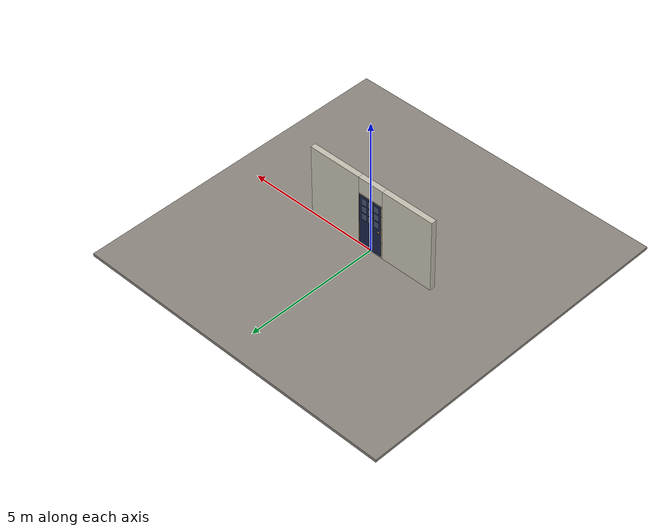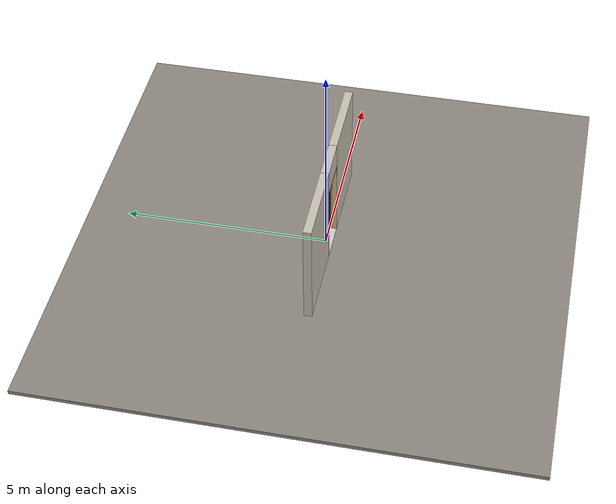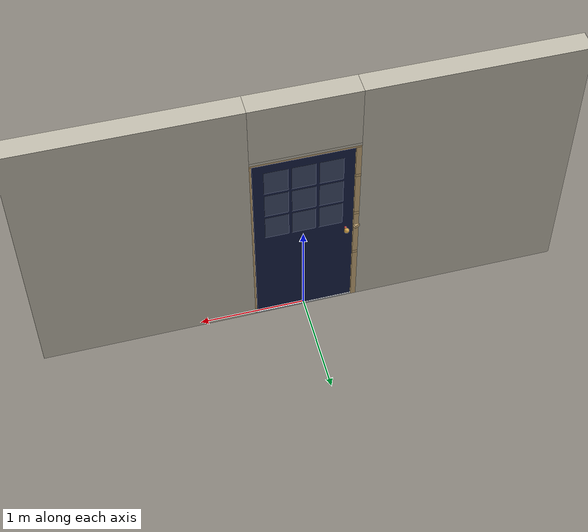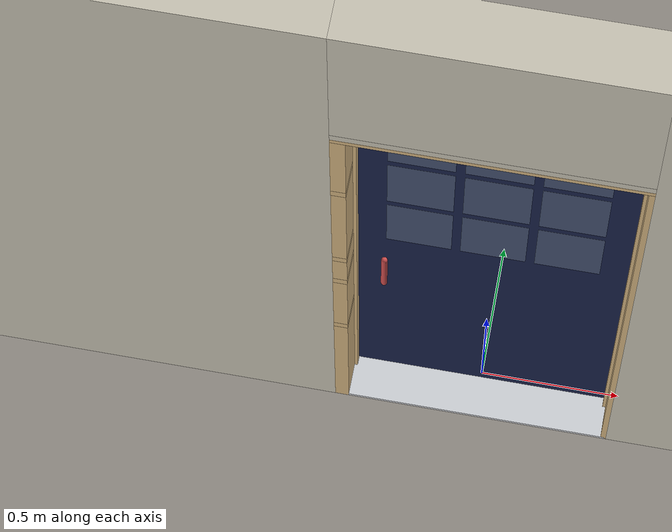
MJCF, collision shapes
<?xml version="1.0" ?>
<mujoco model="db0062_swing_single_minimal">
  <compiler angle="radian" meshdir="../../hardware" texturedir="../../textures" autolimits="true" inertiafromgeom="false"/>
  <option timestep="0.002" integrator="implicitfast" cone="elliptic" impratio="10" noslip_iterations="3">
    <flag multiccd="enable"/>
  </option>
  <size memory="16M"/>
  <default>
    <geom condim="4" solref="0.005 1" solimp="0.95 0.99 0.001"/>
    <joint solreflimit="0.005 1" solimplimit="0.95 0.99 0.001"/>
    <tendon solreflimit="0.005 1"/>
    <equality solref="0.002 1"/>
  </default>
  <visual>
    <headlight ambient="0.4 0.4 0.4" diffuse="0.7 0.7 0.7" specular="0.2 0.2 0.2"/>
    <quality shadowsize="4096"/>
    <map znear="0.01" zfar="60"/>
  </visual>
  <asset>
    <mesh name="handleset_beb5526ad2" file="handleset_beb5526ad2.obj"/>
    <mesh name="knob_d1888f6f03" file="knob_d1888f6f03.obj"/>
    <material name="mat_floor" rgba="0.55 0.53 0.5 1" specular="0.2" shininess="0.15" reflectance="0"/>
    <material name="mat_wall" rgba="0.78 0.76 0.7 1" specular="0.2" shininess="0.1" reflectance="0"/>
    <material name="mat_leaf" rgba="0.09 0.13 0.28 1" specular="0.2" shininess="0.55" reflectance="0"/>
    <material name="mat_glass" rgba="0.85 0.92 0.95 0.25" specular="0.2" shininess="0.95" reflectance="0.1"/>
    <material name="mat_hinge" rgba="0.65 0.66 0.68 1" specular="0.74" shininess="0.5" reflectance="0.36"/>
    <material name="mat_op_bronze" rgba="0.3 0.22 0.15 1" specular="0.74" shininess="0.5" reflectance="0.36"/>
    <material name="mat_op_brass" rgba="0.85 0.66 0.3 1" specular="0.8" shininess="0.75" reflectance="0.4"/>
    <material name="mat_trim" rgba="0.85 0.66 0.3 1" specular="0.8" shininess="0.75" reflectance="0.4"/>
    <material name="mat_bolt" rgba="0.85 0.66 0.3 1" specular="0.8" shininess="0.75" reflectance="0.4"/>
    <material name="mat_deadbolt" rgba="0.85 0.66 0.3 1" specular="0.8" shininess="0.75" reflectance="0.4"/>
    <material name="mat_frame" rgba="0.82 0.7 0.5 1" specular="0.2" shininess="0.45" reflectance="0"/>
    <material name="mat_seal" rgba="0.1 0.1 0.1 1" specular="0.2" shininess="0.1" reflectance="0"/>
    <material name="mat_threshold" rgba="0.8 0.81 0.83 1" specular="0.8" shininess="0.6" reflectance="0.4"/>
    <material name="mat_sidelite" rgba="0.85 0.92 0.95 0.25" specular="0.2" shininess="0.95" reflectance="0.1"/>
    <material name="mat_stop" rgba="0.9 0.9 0.92 1" specular="0.8" shininess="0.9" reflectance="0.4"/>
    <texture name="skybox" type="skybox" builtin="gradient" rgb1="0.6 0.7 0.85" rgb2="0.9 0.92 0.95" width="256" height="256"/>
  </asset>
  <worldbody>
    <light name="sun" pos="1.5 -2.5 4" dir="-0.3 0.5 -0.8" directional="true" diffuse="0.8 0.8 0.8" specular="0.3 0.3 0.3" castshadow="true"/>
    <light name="fill" pos="-1.5 2.5 3" dir="0.3 -0.5 -0.7" directional="true" diffuse="0.35 0.35 0.4" castshadow="false"/>
    <camera name="robot_view" pos="0 -2.613187 1.734312" xyaxes="1 0 0 0 0.26963 0.962964" fovy="52"/>
    <camera name="far_view" pos="0 2.471187 1.734312" xyaxes="-1 0 0 0 -0.26963 0.962964" fovy="52"/>
    <camera name="iso" pos="-1.932062 -2.206438 2.141063" xyaxes="0.741536 -0.670913 0 0.242917 0.268487 0.932151" fovy="46"/>
    <camera name="detail_handle" pos="-0.1715 -0.882 1.236" xyaxes="0.97561 0.219512 0 -0.070934 0.315262 0.94635" fovy="38"/>
    <geom name="floor" type="box" size="6 6 0.05" pos="0 0 -0.05" material="mat_floor" group="0" contype="1" conaffinity="1" friction="0.8 0.005 0.0001" density="2400"/>
    <geom name="wall_left" type="box" size="0.99525 0.1 1.35" pos="-1.50475 -0.071 1.35" material="mat_wall" group="0" contype="1" conaffinity="1" friction="0.6 0.005 0.0001" density="800"/>
    <geom name="wall_right" type="box" size="1.01025 0.1 1.35" pos="1.48975 -0.071 1.35" material="mat_wall" group="0" contype="1" conaffinity="1" friction="0.6 0.005 0.0001" density="800"/>
    <geom name="wall_header" type="box" size="0.4945 0.1 0.303" pos="-0.015 -0.071 2.397" material="mat_wall" group="0" contype="1" conaffinity="1" friction="0.6 0.005 0.0001" density="800"/>
    <geom name="jamb_hinge" type="box" size="0.0095 0.1 1.0225" pos="0.47 -0.071 1.0225" material="mat_frame" group="0" contype="1" conaffinity="1" friction="0.6 0.005 0.0001" density="400"/>
    <geom name="strike_641_wall_n" type="box" size="0.0245 0.08075 0.0155" pos="-0.485 -0.09025 0.641" material="mat_frame" group="0" contype="1" conaffinity="1" friction="0.6 0.005 0.0001" density="400"/>
    <geom name="strike_641_wall_p" type="box" size="0.0245 0.00975 0.0155" pos="-0.485 0.01925 0.641" material="mat_frame" group="0" contype="1" conaffinity="1" friction="0.6 0.005 0.0001" density="400"/>
    <geom name="strike_641_back" type="box" size="0.0125 0.0095 0.0155" pos="-0.497 0 0.641" material="mat_frame" group="0" contype="1" conaffinity="1" friction="0.6 0.005 0.0001" density="400"/>
    <geom name="strike_1016_wall_n" type="box" size="0.0245 0.081575 0.0167" pos="-0.485 -0.089425 1.016" material="mat_frame" group="0" contype="1" conaffinity="1" friction="0.6 0.005 0.0001" density="400"/>
    <geom name="strike_1016_wall_p" type="box" size="0.0245 0.008 0.0167" pos="-0.485 0.01585 1.016" material="mat_frame" group="0" contype="1" conaffinity="1" friction="0.6 0.005 0.0001" density="400"/>
    <geom name="strike_1016_ramp" type="box" size="0.0245 0.01649 0.0167" pos="-0.489636 0.028673 1.016" quat="0.977148 0 0 0.212558" material="mat_frame" group="0" contype="1" conaffinity="1" friction="0.12 0.005 0.0001" density="400"/>
    <geom name="strike_1016_back" type="box" size="0.01615 0.00785 0.0167" pos="-0.49335 0 1.016" material="mat_frame" group="0" contype="1" conaffinity="1" friction="0.6 0.005 0.0001" density="400"/>
    <geom name="strike_1191_wall_n" type="box" size="0.0245 0.08075 0.0155" pos="-0.485 -0.09025 1.191" material="mat_frame" group="0" contype="1" conaffinity="1" friction="0.6 0.005 0.0001" density="400"/>
    <geom name="strike_1191_wall_p" type="box" size="0.0245 0.00975 0.0155" pos="-0.485 0.01925 1.191" material="mat_frame" group="0" contype="1" conaffinity="1" friction="0.6 0.005 0.0001" density="400"/>
    <geom name="strike_1191_back" type="box" size="0.0125 0.0095 0.0155" pos="-0.497 0 1.191" material="mat_frame" group="0" contype="1" conaffinity="1" friction="0.6 0.005 0.0001" density="400"/>
    <geom name="strike_1691_wall_n" type="box" size="0.0245 0.08075 0.0155" pos="-0.485 -0.09025 1.691" material="mat_frame" group="0" contype="1" conaffinity="1" friction="0.6 0.005 0.0001" density="400"/>
    <geom name="strike_1691_wall_p" type="box" size="0.0245 0.00975 0.0155" pos="-0.485 0.01925 1.691" material="mat_frame" group="0" contype="1" conaffinity="1" friction="0.6 0.005 0.0001" density="400"/>
    <geom name="strike_1691_back" type="box" size="0.0125 0.0095 0.0155" pos="-0.497 0 1.691" material="mat_frame" group="0" contype="1" conaffinity="1" friction="0.6 0.005 0.0001" density="400"/>
    <geom name="jamb_strike_0" type="box" size="0.0245 0.1 0.31275" pos="-0.485 -0.071 0.31275" material="mat_frame" group="0" contype="1" conaffinity="1" friction="0.6 0.005 0.0001" density="400"/>
    <geom name="jamb_strike_1" type="box" size="0.0245 0.1 0.1714" pos="-0.485 -0.071 0.8279" material="mat_frame" group="0" contype="1" conaffinity="1" friction="0.6 0.005 0.0001" density="400"/>
    <geom name="jamb_strike_2" type="box" size="0.0245 0.1 0.0714" pos="-0.485 -0.071 1.1041" material="mat_frame" group="0" contype="1" conaffinity="1" friction="0.6 0.005 0.0001" density="400"/>
    <geom name="jamb_strike_3" type="box" size="0.0245 0.1 0.2345" pos="-0.485 -0.071 1.441" material="mat_frame" group="0" contype="1" conaffinity="1" friction="0.6 0.005 0.0001" density="400"/>
    <geom name="jamb_strike_4" type="box" size="0.0245 0.1 0.16925" pos="-0.485 -0.071 1.87575" material="mat_frame" group="0" contype="1" conaffinity="1" friction="0.6 0.005 0.0001" density="400"/>
    <geom name="jamb_head" type="box" size="0.4945 0.1 0.0095" pos="-0.015 -0.071 2.0545" material="mat_frame" group="0" contype="1" conaffinity="1" friction="0.6 0.005 0.0001" density="400"/>
    <geom name="head_stud" type="box" size="0.4945 0.1 0.015" pos="-0.015 -0.071 2.079" material="mat_wall" group="0" contype="1" conaffinity="1" friction="0.6 0.005 0.0001" density="500"/>
    <geom name="stop_hinge" type="box" size="0.0055 0.016 1.0225" pos="0.455 -0.0385 1.0225" material="mat_frame" group="0" contype="1" conaffinity="1" friction="0.6 0.005 0.0001" density="400"/>
    <geom name="stop_strike" type="box" size="0.0055 0.016 1.0225" pos="-0.455 -0.0385 1.0225" material="mat_frame" group="0" contype="1" conaffinity="1" friction="0.6 0.005 0.0001" density="400"/>
    <geom name="stop_head" type="box" size="0.4605 0.016 0.0055" pos="0 -0.0385 2.0395" material="mat_frame" group="0" contype="1" conaffinity="1" friction="0.6 0.005 0.0001" density="400"/>
    <geom name="threshold" type="box" size="0.4795 0.1 0.0065" pos="0 -0.071 0.0065" material="mat_threshold" group="0" contype="1" conaffinity="1" friction="0.5 0.005 0.0001" density="2700"/>
    <site name="approach_point" pos="0 -1.5 0" quat="1 0 0 0" size="0.05" rgba="0.2 0.9 0.2 0.5" group="4"/>
    <site name="goal_point" pos="0 1.5 0" quat="1 0 0 0" size="0.05" rgba="0.2 0.9 0.2 0.5" group="4"/>
    <site name="door_plane_center" pos="0 0 1.0225" quat="1 0 0 0" size="0.02" rgba="0.2 0.9 0.2 0.5" group="4"/>
    <body name="leaf" pos="0.4605 0 0">
      <inertial pos="-0.477782 -0.00254 1.025893" mass="29.817573" quat="0.498398 0.504044 -0.49567 0.501847" diaginertia="2.156747334 9.690076625 11.829041973"/>
      <joint name="leaf_hinge" type="hinge" axis="0 0 -1" pos="-0.003 0.029 0" limited="true" range="0 1.658063" solreflimit="0.02 1" damping="2.25611" frictionloss="2.191472" stiffness="6.6" springref="-0.431654" armature="0.02"/>
      <geom name="leaf_slab" type="box" size="0.457 0.022 1.012" pos="-0.46 0 1.029" material="mat_leaf" group="0" contype="1" conaffinity="1" friction="0.4 0.005 0.0001" density="1"/>
      <geom name="leaf_glass_0" type="box" size="0.10882 0.0228 0.13168" pos="-0.21236 0 1.2214" material="mat_glass" group="1" contype="0" conaffinity="0" density="1"/>
      <geom name="leaf_glass_1" type="box" size="0.10882 0.0228 0.13168" pos="-0.46 0 1.2214" material="mat_glass" group="1" contype="0" conaffinity="0" density="1"/>
      <geom name="leaf_glass_2" type="box" size="0.10882 0.0228 0.13168" pos="-0.70764 0 1.2214" material="mat_glass" group="1" contype="0" conaffinity="0" density="1"/>
      <geom name="leaf_glass_3" type="box" size="0.10882 0.0228 0.13168" pos="-0.21236 0 1.51476" material="mat_glass" group="1" contype="0" conaffinity="0" density="1"/>
      <geom name="leaf_glass_4" type="box" size="0.10882 0.0228 0.13168" pos="-0.46 0 1.51476" material="mat_glass" group="1" contype="0" conaffinity="0" density="1"/>
      <geom name="leaf_glass_5" type="box" size="0.10882 0.0228 0.13168" pos="-0.70764 0 1.51476" material="mat_glass" group="1" contype="0" conaffinity="0" density="1"/>
      <geom name="leaf_glass_6" type="box" size="0.10882 0.0228 0.13168" pos="-0.21236 0 1.80812" material="mat_glass" group="1" contype="0" conaffinity="0" density="1"/>
      <geom name="leaf_glass_7" type="box" size="0.10882 0.0228 0.13168" pos="-0.46 0 1.80812" material="mat_glass" group="1" contype="0" conaffinity="0" density="1"/>
      <geom name="leaf_glass_8" type="box" size="0.10882 0.0228 0.13168" pos="-0.70764 0 1.80812" material="mat_glass" group="1" contype="0" conaffinity="0" density="1"/>
      <geom name="leaf_handleset_n" type="mesh" mesh="handleset_beb5526ad2" pos="-0.812 -0.022 0.956" quat="0.707107 0.707107 0 0" material="mat_op_bronze" group="1" contype="0" conaffinity="0" density="3000"/>
      <geom name="leaf_handleset_col_n" type="capsule" size="0.011 0.09" pos="-0.812 -0.082 0.956" material="mat_op_bronze" group="3" contype="1" conaffinity="1" rgba="0.8 0.3 0.3 0.25" friction="0.7 0.01 0.0001" density="3000"/>
      <site name="leaf_handleset_grip_n" pos="-0.812 -0.082 0.956" quat="1 0 0 0" size="0.012" rgba="0.2 0.9 0.2 0.5" group="4"/>
      <site name="leaf_edge_mid" pos="-0.917 0 1.012" quat="1 0 0 0" size="0.02" rgba="0.2 0.9 0.2 0.5" group="4"/>
      <body name="leaf_handle" pos="-0.847 0 1.016">
        <inertial pos="0 0.058082 0" mass="0.549341" quat="0.707107 0 0 -0.707107" diaginertia="0.000155778 0.000270874 0.000270874"/>
        <joint name="leaf_handle_hinge" type="hinge" axis="0 1 0" limited="true" range="0 0.87" damping="0.142525" frictionloss="0.038" stiffness="0.5" springref="-0.5" armature="0.01"/>
        <geom name="leaf_handle_knob_p" type="mesh" mesh="knob_d1888f6f03" pos="0 0.022 0" quat="0 0 0.707107 0.707107" material="mat_op_brass" group="1" contype="0" conaffinity="0" density="3000"/>
        <geom name="leaf_handle_knob_col_p" type="sphere" size="0.0243" pos="0 0.0685 0" material="mat_op_brass" group="0" contype="1" conaffinity="1" friction="0.9 0.01 0.0001" density="3000"/>
        <geom name="leaf_handle_knob_neck_p" type="cylinder" size="0.011 0.012" pos="0 0.034 0" quat="0.707107 -0.707107 0 0" material="mat_op_brass" group="3" contype="1" conaffinity="1" rgba="0.8 0.3 0.3 0.25" friction="0.6 0.005 0.0001" density="3000"/>
        <site name="leaf_handle_grip_p" pos="0 0.0685 0" quat="1 0 0 0" size="0.012" rgba="0.2 0.9 0.2 0.5" group="4"/>
      </body>
      <body name="leaf_latch_bolt" pos="-0.917 0 1.016">
        <inertial pos="0.00865 0 0" mass="0.041419" quat="0.92388 0.382683 0 0" diaginertia="0.000000798 0.000005598 0.000005598"/>
        <joint name="leaf_latch_bolt_slide" type="slide" axis="1 0 0" limited="true" range="0 0.0127" damping="2" frictionloss="0.3" stiffness="300" springref="-0.008333" armature="0.1"/>
        <geom name="leaf_latch_bolt_capsule" type="capsule" size="0.00635 0.015" pos="0.00865 0 0" quat="0.707107 0 -0.707107 0" material="mat_bolt" group="0" contype="1" conaffinity="1" friction="0.2 0.005 0.0001" density="8500"/>
      </body>
    </body>
  </worldbody>
  <tendon>
    <fixed name="leaf_latch_bolt_coupling" limited="true" range="0 10">
      <joint joint="leaf_latch_bolt_slide" coef="1"/>
      <joint joint="leaf_handle_hinge" coef="-0.015679"/>
    </fixed>
  </tendon>
  <sensor>
    <jointpos name="leaf_hinge_pos" joint="leaf_hinge"/>
    <jointvel name="leaf_hinge_vel" joint="leaf_hinge"/>
    <jointpos name="leaf_handle_hinge_pos" joint="leaf_handle_hinge"/>
    <jointvel name="leaf_handle_hinge_vel" joint="leaf_handle_hinge"/>
    <jointpos name="leaf_latch_bolt_slide_pos" joint="leaf_latch_bolt_slide"/>
    <jointvel name="leaf_latch_bolt_slide_vel" joint="leaf_latch_bolt_slide"/>
  </sensor>
</mujoco>
